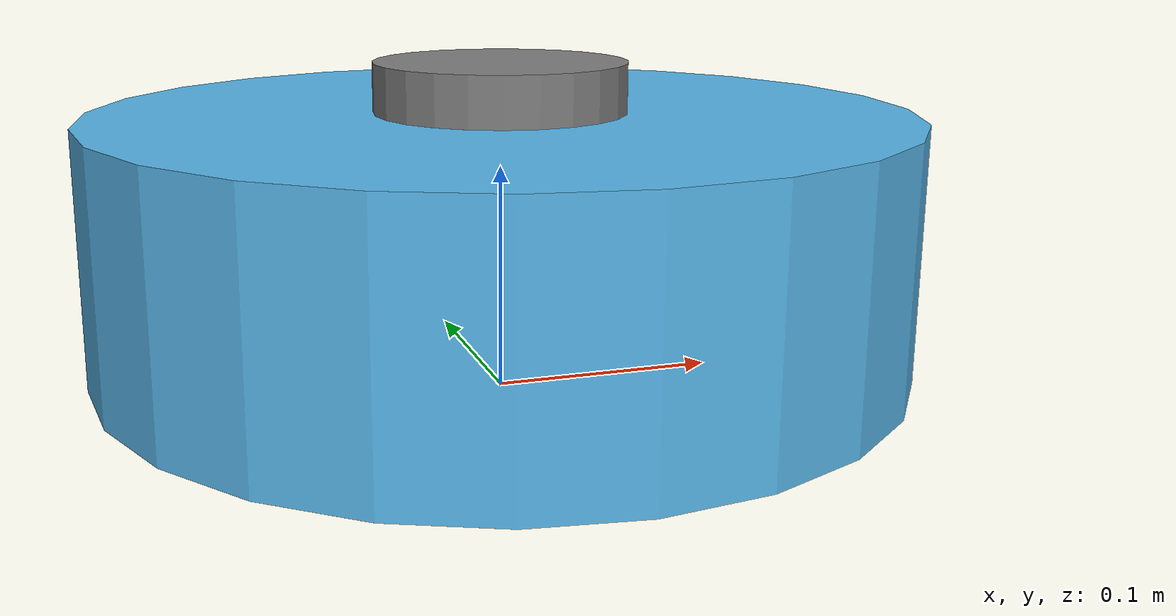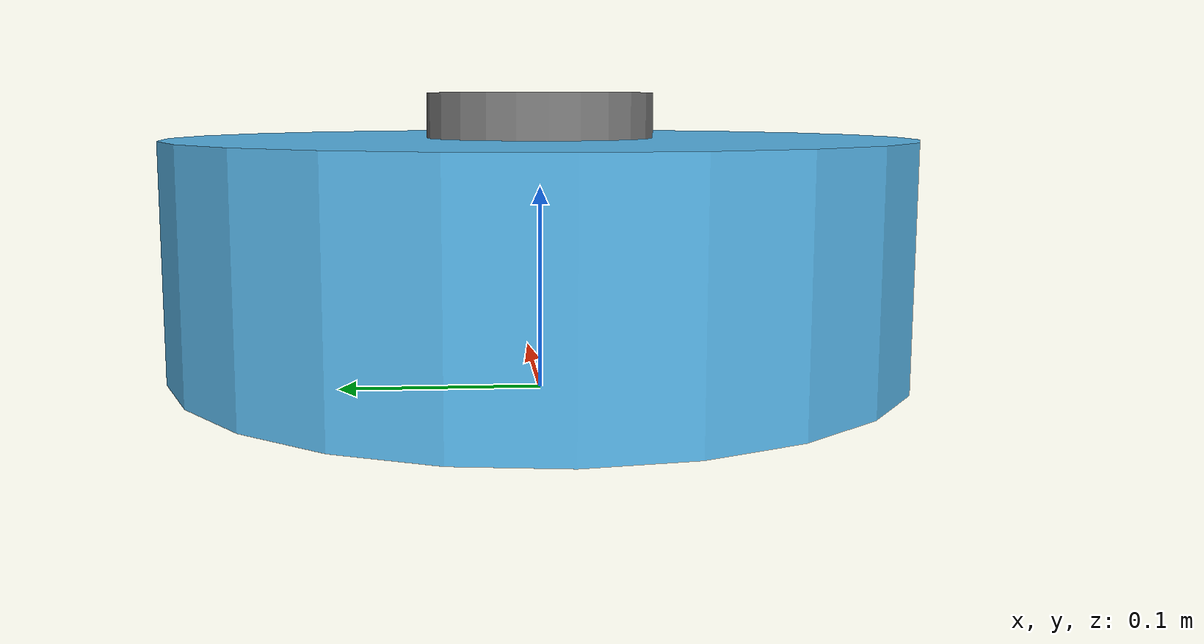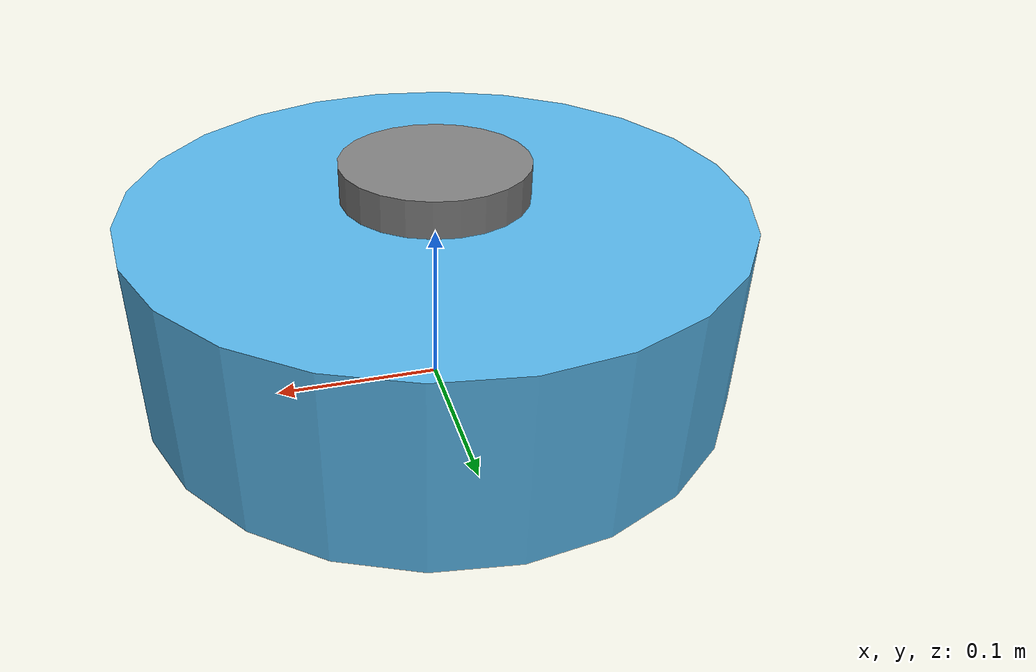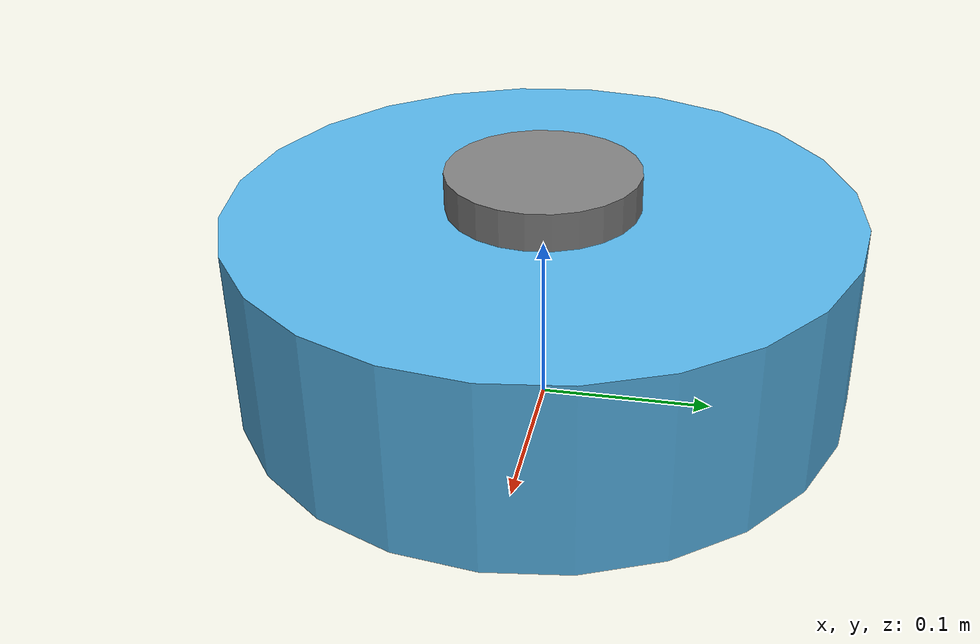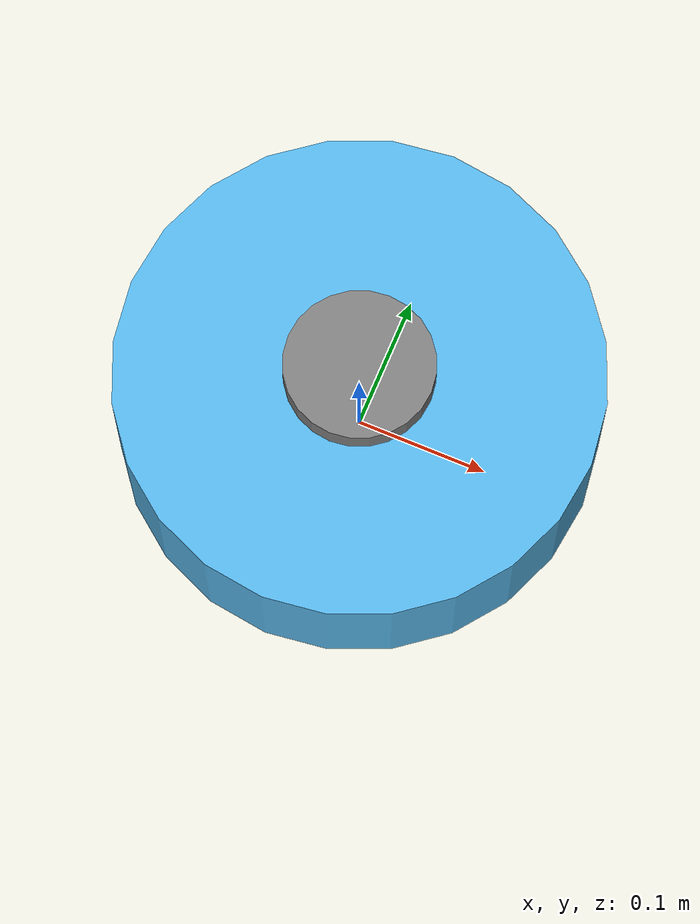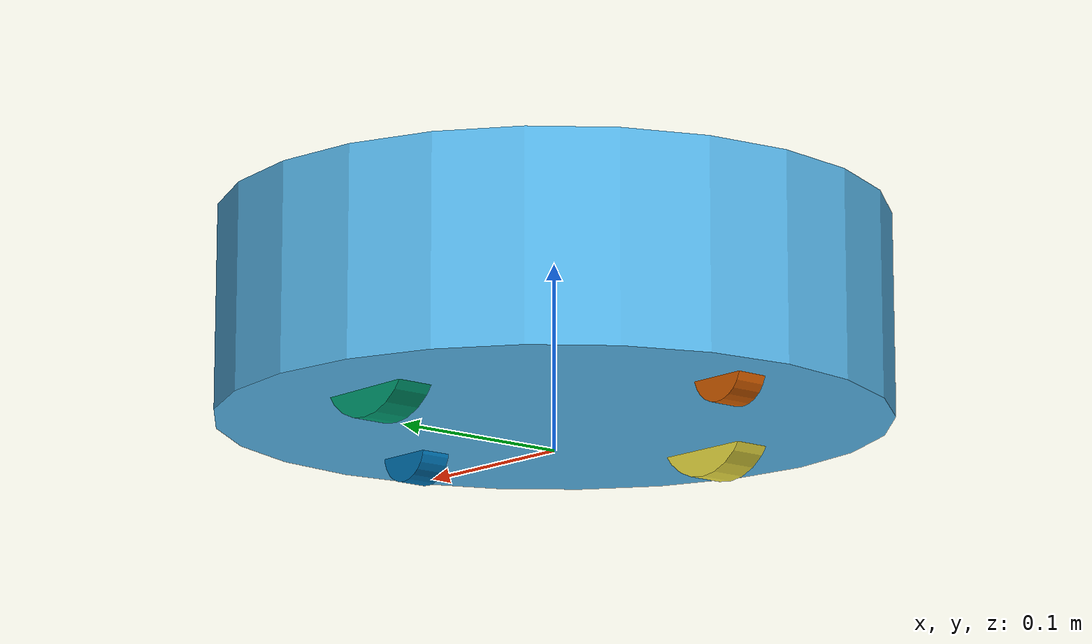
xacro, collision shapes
<?xml version="1.0"?>
<robot name="kobuki_lidar" xmlns:xacro="http://ros.org/wiki/xacro">

    <!-- Include Base Kobuki Model -->
    <xacro:include filename="$(find kobuki_description)/urdf/kobuki_standalone.urdf.xacro" />

    <!-- Include Gazebo File -->
    <xacro:include filename="$(find kobuki_maze_rl)/urdf/kobuki_lidar_maze.gazebo.xacro" />

    <joint name="camera_joint" type="fixed">
        <origin xyz="0.0 0.0 0.12" rpy="0 0 0"/>
        <parent link="base_link"/>
        <child link="base_scan"/>
    </joint>

    <link name="base_scan">
        <visual>
            <origin xyz="0.0 0.0 0.0" rpy="0 0 0"/>
            <geometry>
                <cylinder length="0.0315" radius="0.055"/>
            </geometry>
            <material name="grey">
                <color rgba="0.5 0.5 0.5 1"/>
            </material>
        </visual>
        <collision>
            <origin xyz="0.0 0.0 0.0" rpy="0 0 0"/>
            <geometry>
                <cylinder length="0.0315" radius="0.055"/>
            </geometry>
        </collision>
    </link>

</robot>

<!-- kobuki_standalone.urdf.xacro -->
<robot name="kobuki_standalone"
       xmlns:sensor="http://playerstage.sourceforge.net/gazebo/xmlschema/#sensor"
       xmlns:controller="http://playerstage.sourceforge.net/gazebo/xmlschema/#controller"
       xmlns:interface="http://playerstage.sourceforge.net/gazebo/xmlschema/#interface"
       xmlns:xacro="http://ros.org/wiki/xacro">

  <!-- Defines the kobuki component tag. -->
  <xacro:include filename="$(find custom_robots)/Turtlebot2/turtlebot2_simulated/kobuki_description/urdf/kobuki.urdf.xacro" />
  <xacro:kobuki/>
</robot>

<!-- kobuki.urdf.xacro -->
<robot name="kobuki" xmlns:xacro="http://ros.org/wiki/xacro">
  <xacro:include filename="$(find custom_robots)/urdf/common_properties.urdf.xacro"/>
  <xacro:include filename="$(find custom_robots)/urdf/kobuki_gazebo.urdf.xacro"/>

  <!-- Kobuki -->
  <xacro:macro name="kobuki">
    <link name="base_footprint"/>
    <joint name="base_joint" type="fixed">
      <origin xyz="0 0 0.0102" rpy="0 0 0" />
      <parent link="base_footprint"/>
      <child link="base_link" />
    </joint>
    <link name="base_link">
      <visual>
        <geometry>
          <!-- new mesh -->
          <mesh filename="package://custom_robots/meshes/main_body.dae" />
        </geometry>
        <origin xyz="0.001 0 0.05199" rpy="0 0 0"/>
      </visual>
      <collision name="base">
        <geometry>
          <cylinder length="0.10938" radius="0.178"/>
        </geometry>
        <origin xyz="0.0 0 0.05949" rpy="0 0 0"/>
      </collision>
      <inertial>
        <!-- COM experimentally determined -->
        <origin xyz="0.01 0 0"/>
        <mass value="2.4"/> <!-- 2.4/2.6 kg for small/big battery pack -->
        <inertia ixx="0.019995" ixy="0.0" ixz="0.0"
                 iyy="0.019995" iyz="0.0"
                 izz="0.03675" />
      </inertial>
    </link>

    <joint name="wheel_left_joint" type="continuous">
      <parent link="base_link"/>
      <child link="wheel_left_link"/>
      <origin xyz="0.00 ${0.23/2} 0.0250" rpy="${-M_PI/2} 0 0"/>
      <axis xyz="0 0 1"/>
    </joint>
    <link name="wheel_left_link">
      <visual>
        <geometry>
          <mesh filename="package://custom_robots/meshes/wheel.dae"/>
        </geometry>
        <origin xyz="0 0 0" rpy="0 0 0"/>
      </visual>
      <collision>
        <geometry>
          <cylinder length="0.0206" radius="0.035"/>
        </geometry>
        <origin rpy="0 0 0" xyz="0 0 0"/>
      </collision>
      <inertial>
        <mass value="0.01" />
        <origin xyz="0 0 0" />
        <inertia ixx="0.001" ixy="0.0" ixz="0.0"
                 iyy="0.001" iyz="0.0"
                 izz="0.001" />
      </inertial>
    </link>

    <joint name="wheel_right_joint" type="continuous">
      <parent link="base_link"/>
      <child link="wheel_right_link"/>
      <origin xyz="0.00 -${0.23/2} 0.0250" rpy="${-M_PI/2} 0 0"/>
      <axis xyz="0 0 1"/>
    </joint>
    <link name="wheel_right_link">
      <visual>
        <geometry>
          <mesh filename="package://custom_robots/meshes/wheel.dae"/>
        </geometry>
        <origin xyz="0 0 0" rpy="0 0 0"/>
      </visual>
      <collision>
        <geometry>
          <cylinder length="0.0206" radius="0.035"/>
        </geometry>
        <origin rpy="0 0 0" xyz="0 0 0"/>
      </collision>
      <inertial>
        <mass value="0.01" />
        <origin xyz="0 0 0" />
        <inertia ixx="0.001" ixy="0.0" ixz="0.0"
                 iyy="0.001" iyz="0.0"
                 izz="0.001" />
      </inertial>
    </link>

    <joint name="caster_front_joint" type="fixed">
      <parent link="base_link"/>
      <child link="caster_front_link"/>
      <origin xyz="0.115 0.0 0.007" rpy="${-M_PI/2} 0 0"/>
    </joint>
    <link name="caster_front_link">
      <collision>
        <geometry>
          <cylinder length="0.0176" radius="0.017"/>
        </geometry>
        <origin rpy="0 0 0" xyz="0 0 0"/>
      </collision>
      <inertial>
        <mass value="0.01" />
        <origin xyz="0 0 0" />
        <inertia ixx="0.001" ixy="0.0" ixz="0.0"
                 iyy="0.001" iyz="0.0"
                 izz="0.001" />
      </inertial>
    </link>

    <joint name="caster_back_joint" type="fixed">
      <parent link="base_link"/>
      <child link="caster_back_link"/>
      <origin xyz="-0.135 0.0 0.009" rpy="${-M_PI/2} 0 0"/>
    </joint>
    <link name="caster_back_link">
      <collision>
        <geometry>
          <cylinder length="0.0176" radius="0.017"/>
        </geometry>
        <origin rpy="0 0 0" xyz="0 0 0"/>
      </collision>
      <inertial>
        <mass value="0.01" />
        <origin xyz="0 0 0" />
        <inertia ixx="0.001" ixy="0.0" ixz="0.0"
                 iyy="0.001" iyz="0.0"
                 izz="0.001" />
      </inertial>
    </link>

    <!-- Kobuki's sensors -->
    <joint name="gyro_joint" type="fixed">
      <axis xyz="0 1 0"/>
      <origin xyz="0.056 0.062 0.0202" rpy="0 0 0"/>
      <parent link="base_link"/>
      <child link="gyro_link"/>
    </joint>
    <link name="gyro_link">
      <inertial>
        <mass value="0.001"/>
        <origin xyz="0 0 0" rpy="0 0 0"/>
        <inertia ixx="0.0001" ixy="0" ixz="0"
                 iyy="0.000001" iyz="0"
                 izz="0.0001"/>
      </inertial>
    </link>

    <joint name="cliff_sensor_left_joint" type="fixed">
      <origin xyz="0.08734 0.13601 0.0214" rpy="0 ${M_PI/2} 0" />
      <parent link="base_link"/>
      <child link="cliff_sensor_left_link" />
    </joint>
    <link name="cliff_sensor_left_link">
      <inertial>
        <mass value="0.0001" />
        <origin xyz="0 0 0" />
        <inertia ixx="0.0001" ixy="0.0" ixz="0.0"
                 iyy="0.0001" iyz="0.0"
                 izz="0.0001" />
      </inertial>
    </link>

    <joint name="cliff_sensor_right_joint" type="fixed">
      <origin xyz="0.085 -0.13601 0.0214" rpy="0 ${M_PI/2} 0" />
      <parent link="base_link"/>
      <child link="cliff_sensor_right_link" />
    </joint>
    <link name="cliff_sensor_right_link">
      <inertial>
        <mass value="0.0001" />
        <origin xyz="0 0 0" />
        <inertia ixx="0.0001" ixy="0.0" ixz="0.0"
                 iyy="0.0001" iyz="0.0"
                 izz="0.0001" />
      </inertial>
    </link>

    <joint name="cliff_sensor_front_joint" type="fixed">
      <origin xyz="0.156 0.00 0.0214" rpy="0 ${M_PI/2} 0" />
      <parent link="base_link"/>
      <child link="cliff_sensor_front_link" />
    </joint>
    <link name="cliff_sensor_front_link">
      <inertial>
        <mass value="0.0001" />
        <origin xyz="0 0 0" />
        <inertia ixx="0.0001" ixy="0.0" ixz="0.0"
                 iyy="0.0001" iyz="0.0"
                 izz="0.0001" />
      </inertial>
    </link>

    <!-- Kobuki Gazebo simulation details -->
    <xacro:kobuki_sim/>

  </xacro:macro>
</robot>
